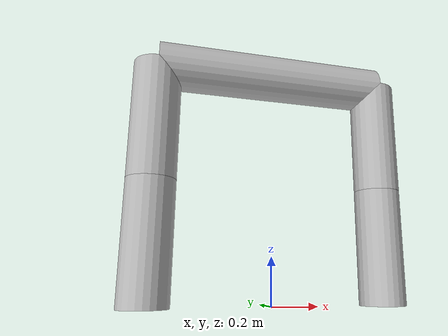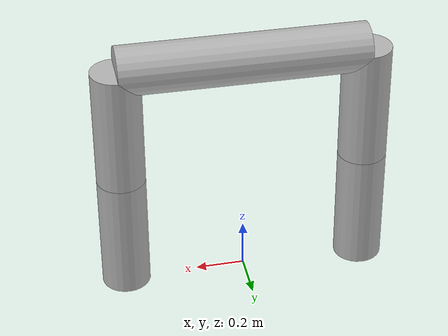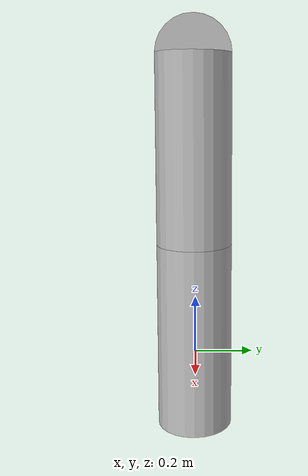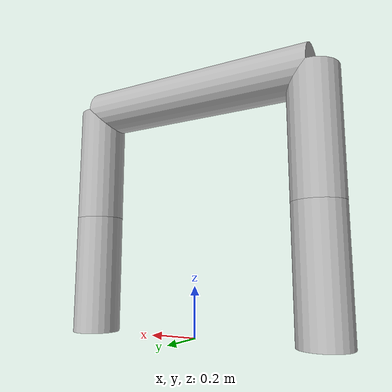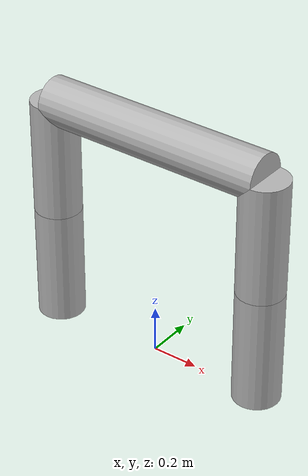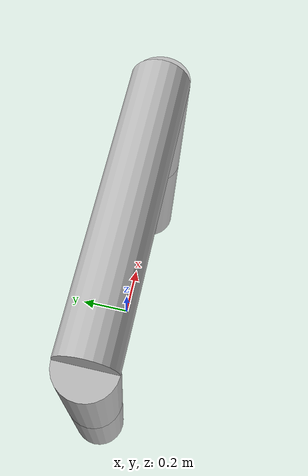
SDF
<?xml version="1.0"?>
<sdf version="1.9">
  <model name="simple_dog_2d">
    <pose>0 0 1 0 0 0</pose>

    <link name="torso">
      <pose>0 0 0 0 1.570796 0</pose>
      <collision name="torso_collision">
        <geometry>
          <cylinder>
            <length>1</length>
            <radius>0.1</radius>
          </cylinder>
        </geometry>
      </collision>
      <visual name="torso_visual">
        <geometry>
          <cylinder>
            <length>1</length>
            <radius>0.1</radius>
          </cylinder>
        </geometry>
      </visual>
    </link>

    <link name="thigh_front">
      <pose relative_to="torso">.25 0 -.5 0 1.570796 0</pose>
      <collision name="thigh_front_collision">
        <geometry>
          <cylinder>
            <length>.5</length>
            <radius>0.1</radius>
          </cylinder>
        </geometry>
      </collision>
      <visual name="thigh_front_visual">
        <geometry>
          <cylinder>
            <length>.5</length>
            <radius>0.1</radius>
          </cylinder>
        </geometry>
      </visual>
    </link>

    <link name="thigh_back">
      <pose relative_to="torso">.25 0 .5 0 1.570796 0</pose>
      <collision name="thigh_back_collision">
        <geometry>
          <cylinder>
            <length>.5</length>
            <radius>0.1</radius>
          </cylinder>
        </geometry>
      </collision>
      <visual name="thigh_back_visual">
        <geometry>
          <cylinder>
            <length>.5</length>
            <radius>0.1</radius>
          </cylinder>
        </geometry>
      </visual>
    </link>

    <link name="lower_leg_front">
      <pose relative_to="thigh_front">0 0 .5 0 0 0</pose>
      <collision name="lower_leg_front_collision">
        <geometry>
          <cylinder>
            <length>.5</length>
            <radius>0.1</radius>
          </cylinder>
        </geometry>
      </collision>
      <visual name="lower_leg_front_visual">
        <geometry>
          <cylinder>
            <length>.5</length>
            <radius>0.1</radius>
          </cylinder>
        </geometry>
      </visual>
    </link>

    <link name="lower_leg_back">
      <pose relative_to="thigh_back">0 0 .5 0 0 0</pose>
      <collision name="lower_leg_back_collision">
        <geometry>
          <cylinder>
            <length>.5</length>
            <radius>0.1</radius>
          </cylinder>
        </geometry>
      </collision>
      <visual name="lower_leg_back_visual">
        <geometry>
          <cylinder>
            <length>.5</length>
            <radius>0.1</radius>
          </cylinder>
        </geometry>
      </visual>
    </link>

    <joint name="hip_front" type="revolute">
      <pose>0 0 -.25 0 0 0</pose>
      <parent>torso</parent>
      <child>thigh_front</child>
      <axis>
        <xyz>0 1 0</xyz>
        <limit>
          <effort>0</effort>
        </limit>
        <dynamics>
          <damping>0</damping>
          <friction>0</friction>
          <spring_reference>0</spring_reference>
          <spring_stiffness>0</spring_stiffness>
        </dynamics>
      </axis>
    </joint>

    <joint name="hip_back" type="revolute">
      <pose>0 0 -.25 0 0 0</pose>
      <parent>torso</parent>
      <child>thigh_back</child>
      <axis>
        <xyz>0 1 0</xyz>
        <limit>
          <effort>0</effort>
        </limit>
        <dynamics>
          <damping>0</damping>
          <friction>0</friction>
          <spring_reference>0</spring_reference>
          <spring_stiffness>0</spring_stiffness>
        </dynamics>
      </axis>
    </joint>

    <joint name="knee_front" type="revolute">
      <pose>0 0 -.25 0 0 0</pose>
      <parent>thigh_front</parent>
      <child>lower_leg_front</child>
      <axis>
        <xyz>0 1 0</xyz>
        <limit>
          <effort>0</effort>
        </limit>
        <dynamics>
          <damping>0</damping>
          <friction>0</friction>
          <spring_reference>0</spring_reference>
          <spring_stiffness>0</spring_stiffness>
        </dynamics>
      </axis>
    </joint>

    <joint name="knee_back" type="revolute">
      <pose>0 0 -.25 0 0 0</pose>
      <parent>thigh_back</parent>
      <child>lower_leg_back</child>
      <axis>
        <xyz>0 1 0</xyz>
        <limit>
          <effort>0</effort>
        </limit>
        <dynamics>
          <damping>0</damping>
          <friction>0</friction>
          <spring_reference>0</spring_reference>
          <spring_stiffness>0</spring_stiffness>
        </dynamics>
      </axis>
    </joint>

  </model>
</sdf>
